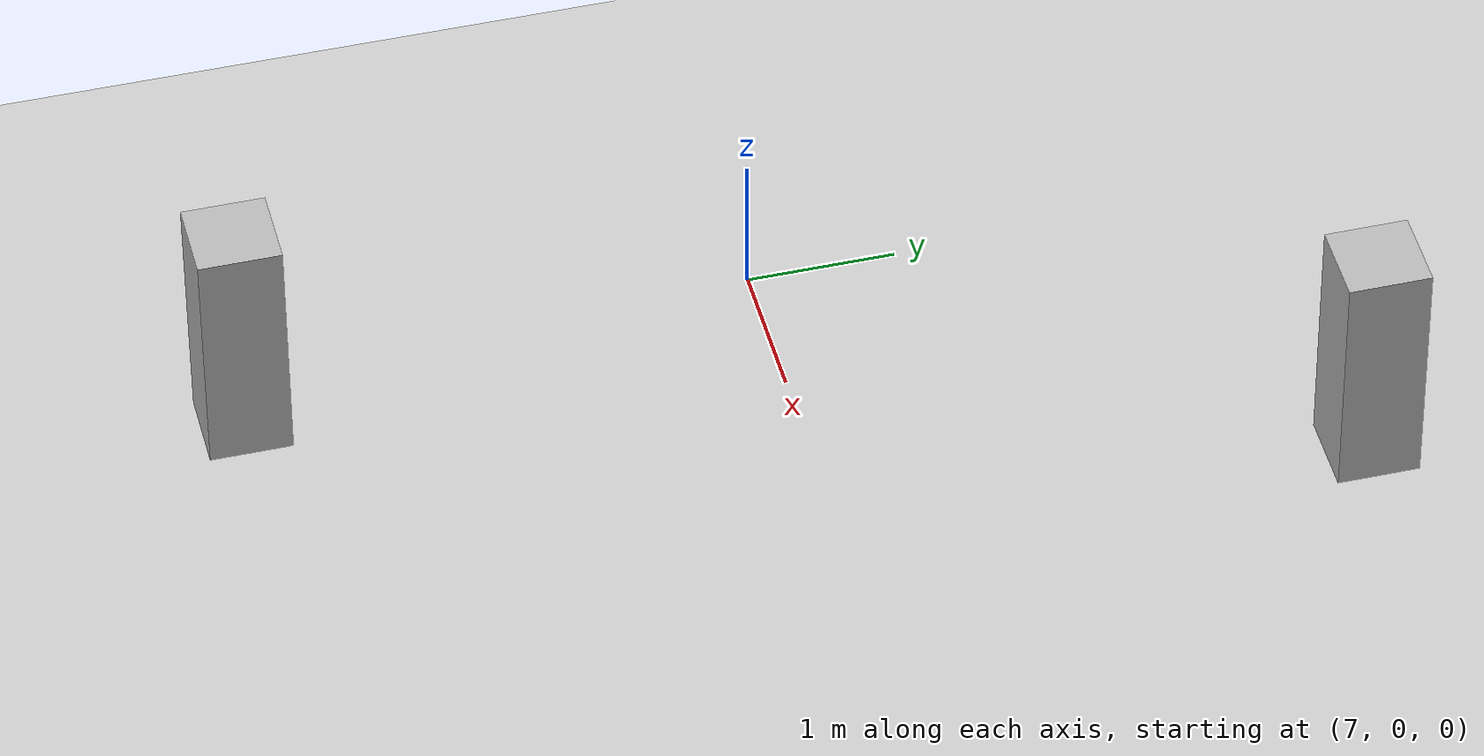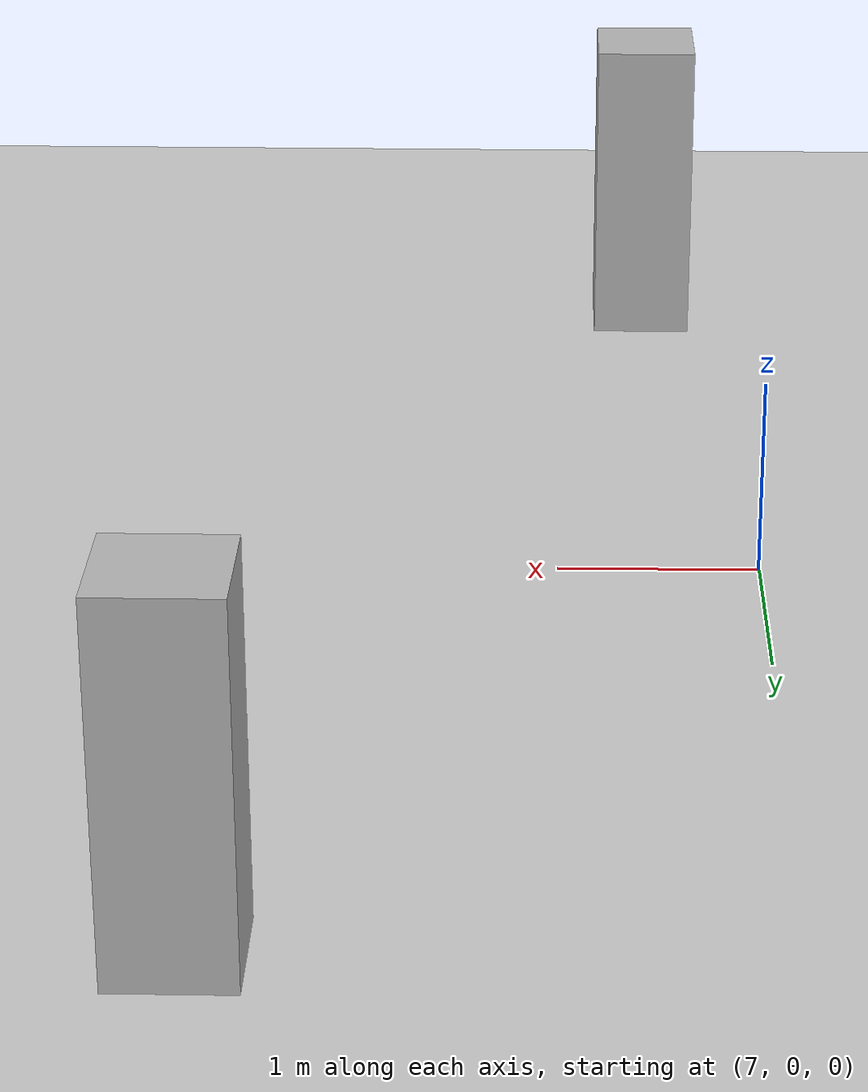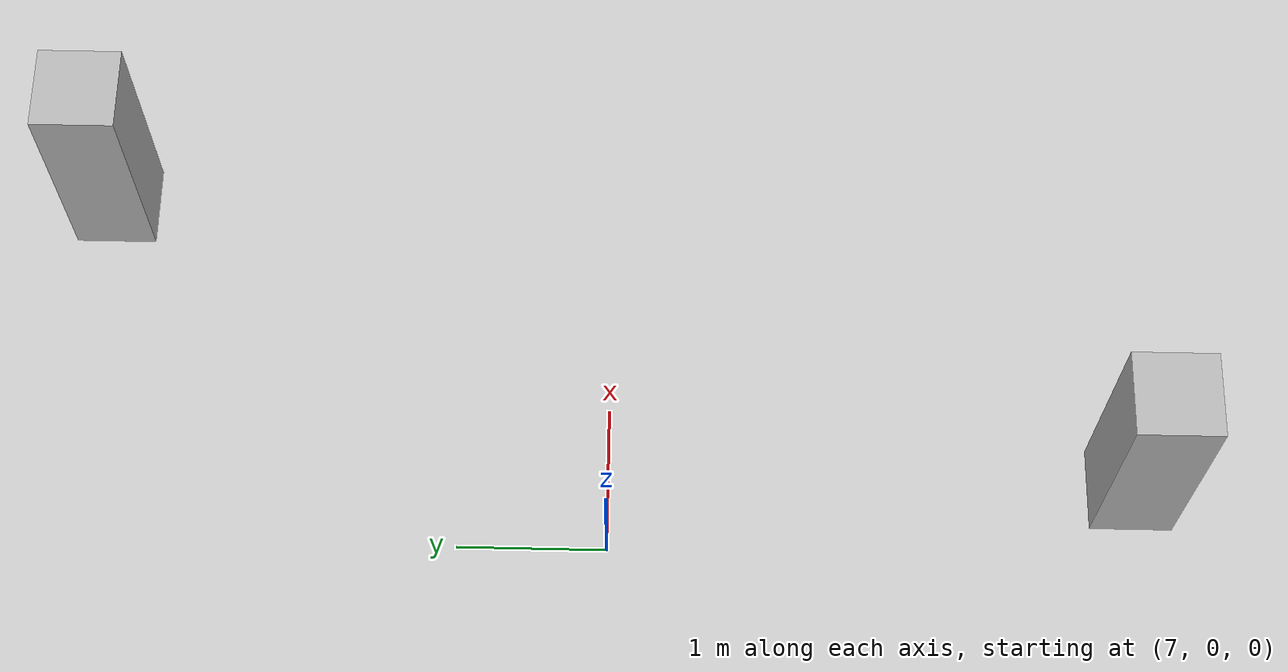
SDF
<?xml version="1.0"?>
<sdf version="1.6">
  <world name="v2-04g-p2-q1-support-multi-true-conflict-s5348">
    <gravity>0 0 -9.81</gravity>
    <physics name="v2_deterministic" type="ode">
      <max_step_size>0.002</max_step_size>
      <real_time_update_rate>500</real_time_update_rate>
    </physics>
    <include>
      <uri>model://sun</uri>
    </include>
    <include>
      <uri>model://ground_plane</uri>
    </include>
    <model name="crossing-agent-a">
      <static>true</static>
      <pose>7.500000000 -3.500000000 0.850000000 0 0 1.570796327</pose>
      <link name="link">
        <collision name="collision">
          <geometry>
            <box>
              <size>0.550000 0.550000 1.700000</size>
            </box>
          </geometry>
        </collision>
        <visual name="visual">
          <geometry>
            <box>
              <size>0.550000 0.550000 1.700000</size>
            </box>
          </geometry>
        </visual>
      </link>
      <plugin name="crossing-agent-a_trajectory" filename="libv2_trajectory_actor_plugin.so">
        <loop>false</loop>
        <z>0.850000</z>
        <waypoint>
          <time>10.500000000</time>
          <x>7.500000000</x>
          <y>-3.500000000</y>
          <yaw>1.570796327</yaw>
        </waypoint>
        <waypoint>
          <time>18.500000000</time>
          <x>7.500000000</x>
          <y>3.500000000</y>
          <yaw>1.570796327</yaw>
        </waypoint>
      </plugin>
    </model>
    <model name="crossing-agent-b">
      <static>true</static>
      <pose>9.500000000 3.500000000 0.850000000 0 0 -1.570796327</pose>
      <link name="link">
        <collision name="collision">
          <geometry>
            <box>
              <size>0.550000 0.550000 1.700000</size>
            </box>
          </geometry>
        </collision>
        <visual name="visual">
          <geometry>
            <box>
              <size>0.550000 0.550000 1.700000</size>
            </box>
          </geometry>
        </visual>
      </link>
      <plugin name="crossing-agent-b_trajectory" filename="libv2_trajectory_actor_plugin.so">
        <loop>false</loop>
        <z>0.850000</z>
        <waypoint>
          <time>12.300000000</time>
          <x>9.500000000</x>
          <y>3.500000000</y>
          <yaw>-1.570796327</yaw>
        </waypoint>
        <waypoint>
          <time>20.300000000</time>
          <x>9.500000000</x>
          <y>-3.500000000</y>
          <yaw>-1.570796327</yaw>
        </waypoint>
      </plugin>
    </model>
  </world>
</sdf>
